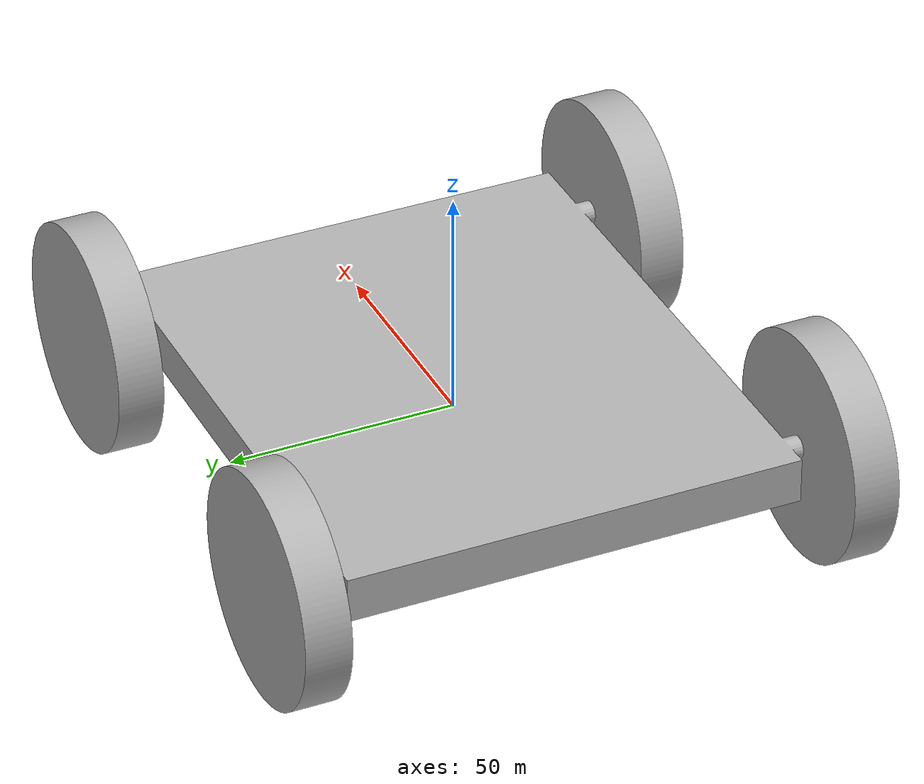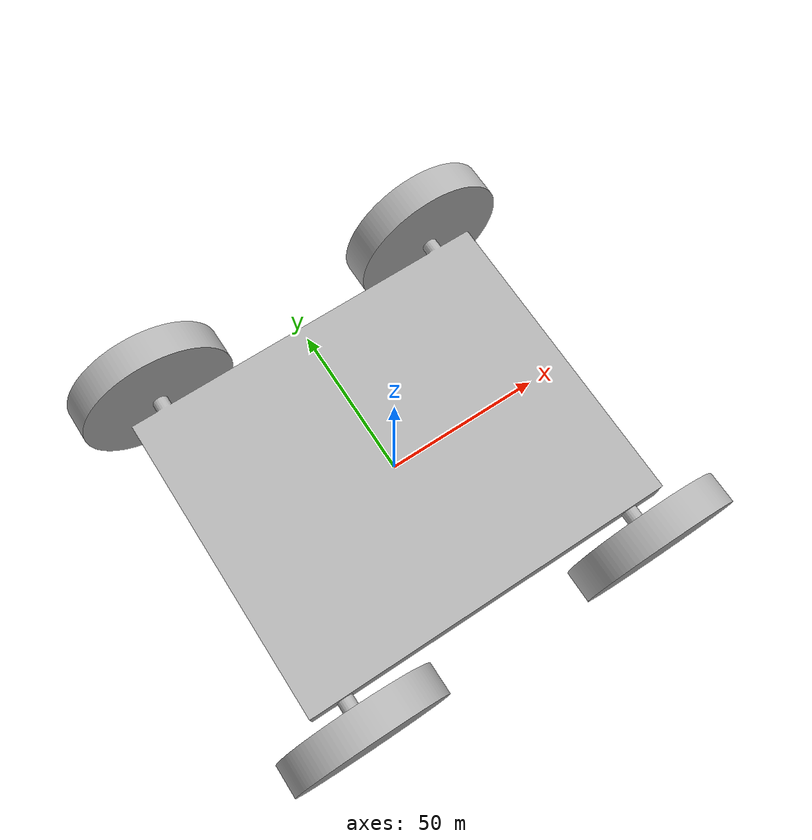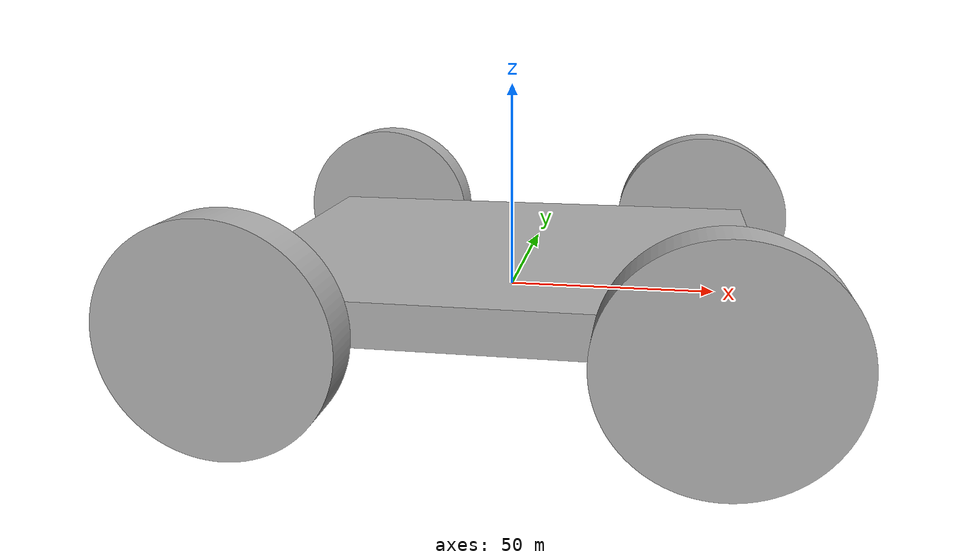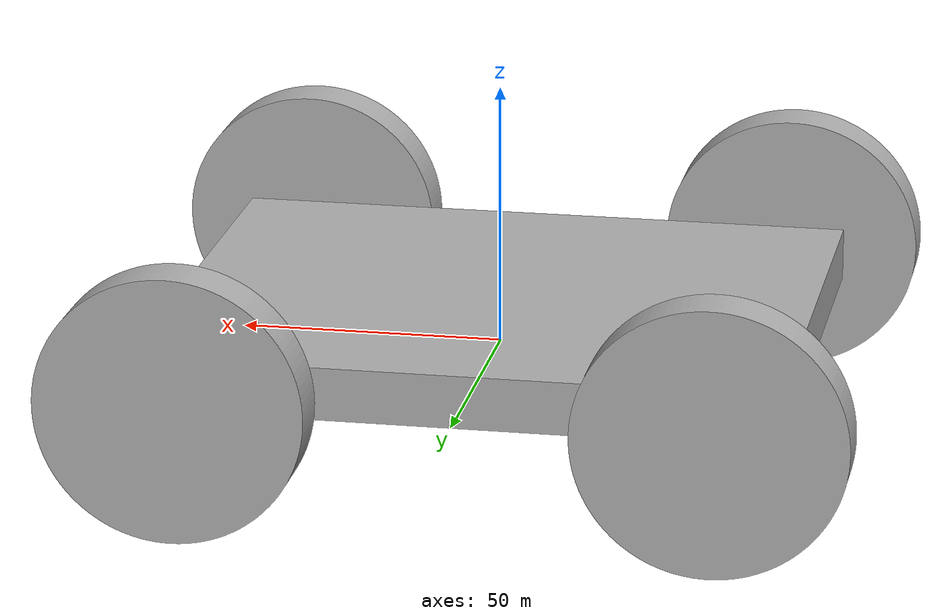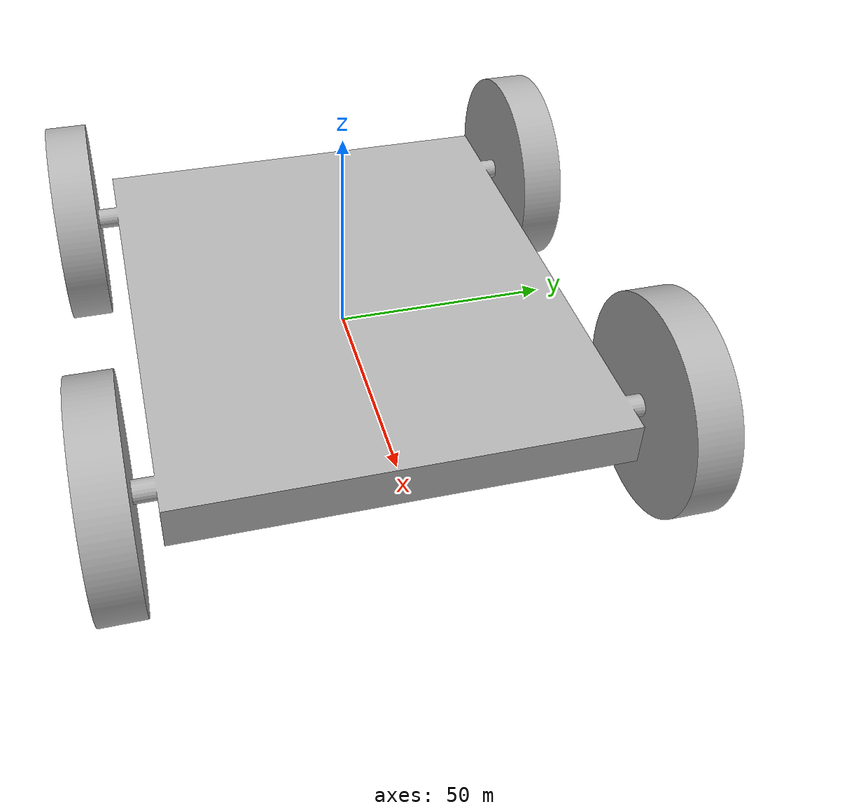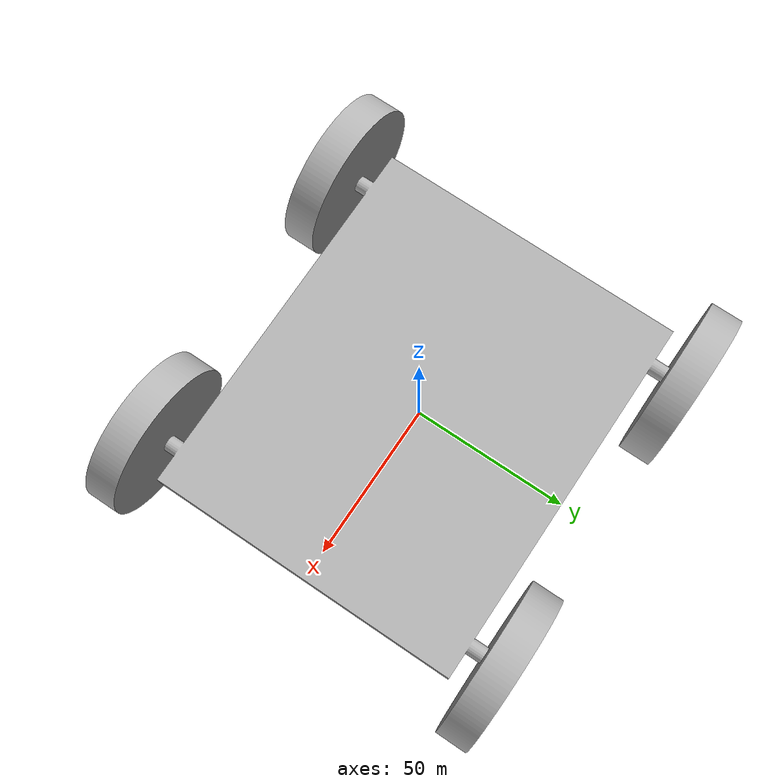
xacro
<?xml version="1.0" ?>
<robot name="zbot" xmlns:xacro="http://www.ros.org/wiki/xacro">

<!-- Fixed xacro includes -->
<xacro:include filename="materials.xacro" />
<xacro:include filename="zbot.ros2control.xacro" />
<xacro:include filename="zbot.gazebo.xacro" />

<link name="base_footprint"/>
<joint name = "base_footprint_joint" type="fixed">
  <parent link="base_footprint"/>
  <child link="base_link"/>
  <origin xyz="0 0 0.02" rpy="0 0 0"/>
</joint>
<link name="base_link">
  <inertial>
    <origin xyz="0.0 0.0 0.005" rpy="0 0 0"/>
    <mass value="0.9450826877913348"/>
    <inertia ixx="0.000801" iyy="0.001146" izz="0.001931" ixy="0.0" iyz="0.0" ixz="0.0"/>
  </inertial>
  <visual>
    <origin xyz="0 0 0" rpy="0 0 0"/>
    <geometry>
      <mesh filename="package://zbot_description/meshes/base_link.stl" scale="1 1 1"/>
    </geometry>
    <material name="silver"/>
  </visual>
  <collision>
    <origin xyz="0 0 0" rpy="0 0 0"/>
    <geometry>
      <mesh filename="package://zbot_description/meshes/base_link.stl" scale="1 1 1"/>
    </geometry>
  </collision>
</link>

<link name="lb_wheel_1">
  <inertial>
    <origin xyz="-4.1874584825324357e-07 -0.0049999999999999975 7.806255641895632e-18" rpy="0 0 0"/>
    <mass value="0.1541343895667492"/>
    <inertia ixx="2.5e-05" iyy="4.8e-05" izz="2.5e-05" ixy="0.0" iyz="0.0" ixz="0.0"/>
  </inertial>
  <visual>
    <origin xyz="-0.049055 0.055 -0.005" rpy="0 0 0"/>
    <geometry>
      <mesh filename="package://zbot_description/meshes/lb_wheel_1.stl" scale="1 1 1"/>
    </geometry>
    <material name="silver"/>
  </visual>
  <collision>
    <origin xyz="-0.049055 0.055 -0.005" rpy="0 0 0"/>
    <geometry>
      <mesh filename="package://zbot_description/meshes/lb_wheel_1.stl" scale="1 1 1"/>
    </geometry>
  </collision>
</link>

<link name="lf_wheel_1">
  <inertial>
    <origin xyz="4.1874584825324357e-07 -0.0049999999999999975 7.806255641895632e-18" rpy="0 0 0"/>
    <mass value="0.1541343895667492"/>
    <inertia ixx="2.5e-05" iyy="4.8e-05" izz="2.5e-05" ixy="-0.0" iyz="0.0" ixz="0.0"/>
  </inertial>
  <visual>
    <origin xyz="0.049055 0.055 -0.005" rpy="0 0 0"/>
    <geometry>
      <mesh filename="package://zbot_description/meshes/lf_wheel_1.stl" scale="1 1 1"/>
    </geometry>
    <material name="silver"/>
  </visual>
  <collision>
    <origin xyz="0.049055 0.055 -0.005" rpy="0 0 0"/>
    <geometry>
      <mesh filename="package://zbot_description/meshes/lf_wheel_1.stl" scale="1 1 1"/>
    </geometry>
  </collision>
  <!-- Front left wheel friction -->
  <gazebo reference="lf_wheel_1">
    <mu1>0.8</mu1>
    <mu2>0.3</mu2>
    <kp>1000000.0</kp>
    <kd>1.0</kd>
  </gazebo>
</link>

<link name="rb_wheel_1">
  <inertial>
    <origin xyz="-4.1874584825324357e-07 0.0049999999999999975 -6.938893903907228e-18" rpy="0 0 0"/>
    <mass value="0.1541343895667492"/>
    <inertia ixx="2.5e-05" iyy="4.8e-05" izz="2.5e-05" ixy="-0.0" iyz="0.0" ixz="-0.0"/>
  </inertial>
  <visual>
    <origin xyz="-0.049055 -0.055 -0.005" rpy="0 0 0"/>
    <geometry>
      <mesh filename="package://zbot_description/meshes/rb_wheel_1.stl" scale="1 1 1"/>
    </geometry>
    <material name="silver"/>
  </visual>
  <collision>
    <origin xyz="-0.049055 -0.055 -0.005" rpy="0 0 0"/>
    <geometry>
      <mesh filename="package://zbot_description/meshes/rb_wheel_1.stl" scale="1 1 1"/>
    </geometry>
  </collision>
</link>

<link name="rf_wheel_1">
  <inertial>
    <origin xyz="4.1874584825324357e-07 0.0049999999999999975 -6.938893903907228e-18" rpy="0 0 0"/>
    <mass value="0.1541343895667492"/>
    <inertia ixx="2.5e-05" iyy="4.8e-05" izz="2.5e-05" ixy="0.0" iyz="0.0" ixz="-0.0"/>
  </inertial>
  <visual>
    <origin xyz="0.049055 -0.055 -0.005" rpy="0 0 0"/>
    <geometry>
      <mesh filename="package://zbot_description/meshes/rf_wheel_1.stl" scale="1 1 1"/>
    </geometry>
    <material name="silver"/>
  </visual>
  <collision>
    <origin xyz="0.049055 -0.055 -0.005" rpy="0 0 0"/>
    <geometry>
      <mesh filename="package://zbot_description/meshes/rf_wheel_1.stl" scale="1 1 1"/>
    </geometry>
  </collision>
</link>

<joint name="lb_wheel_joint" type="continuous">
  <origin xyz="-0.049055 0.055 0.005" rpy="0 0 0"/>
  <parent link="base_link"/>
  <child link="lb_wheel_1"/>
  <axis xyz="0.0 1.0 0.0"/>
</joint>

<joint name="lf_wheel_joint" type="continuous">
  <origin xyz="0.049055 0.055 0.005" rpy="0 0 0"/>
  <parent link="base_link"/>
  <child link="lf_wheel_1"/>
  <axis xyz="0.0 1.0 0.0"/>
</joint>

<joint name="rb_wheel_joint" type="continuous">
  <origin xyz="-0.049055 -0.055 0.005" rpy="0 0 0"/>
  <parent link="base_link"/>
  <child link="rb_wheel_1"/>
  <axis xyz="0.0 1.0 0.0"/>
</joint>

<joint name="rf_wheel_joint" type="continuous">
  <origin xyz="0.049055 -0.055 0.005" rpy="0 0 0"/>
  <parent link="base_link"/>
  <child link="rf_wheel_1"/>
  <axis xyz="0.0 1.0 0.0"/>
</joint>

</robot>

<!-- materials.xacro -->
<robot name="zbot" xmlns:xacro="http://www.ros.org/wiki/xacro" >

<material name="silver">
  <color rgba="0.700 0.700 0.700 1.000"/>
</material>

</robot>

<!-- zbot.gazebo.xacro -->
<robot name="zbot" xmlns:xacro="http://www.ros.org/wiki/xacro">

  <xacro:property name="body_color" value="Gazebo/Silver" />

  <!-- Base Link Gazebo Properties -->
  <gazebo reference="base_link">
    <material>${body_color}</material>
    <mu1>0.2</mu1>
    <mu2>0.2</mu2>
    <self_collide>true</self_collide>
    <gravity>true</gravity>
  </gazebo>

  <!-- Left Back Wheel -->
  <gazebo reference="lb_wheel_1">
    <material>${body_color}</material>
    <mu1>0.8</mu1>
    <mu2>0.3</mu2>
    <kp>1000000.0</kp>
    <kd>1.0</kd>
    <self_collide>false</self_collide>
  </gazebo>

  <!-- Left Front Wheel -->
  <gazebo reference="lf_wheel_1">
    <material>${body_color}</material>
    <mu1>0.8</mu1>
    <mu2>0.3</mu2>
    <kp>1000000.0</kp>
    <kd>1.0</kd>
    <self_collide>false</self_collide>
  </gazebo>

  <!-- Right Back Wheel -->
  <gazebo reference="rb_wheel_1">
    <material>${body_color}</material>
    <mu1>0.8</mu1>
    <mu2>0.3</mu2>
    <kp>1000000.0</kp>
    <kd>1.0</kd>
    <self_collide>false</self_collide>
  </gazebo>

  <!-- Right Front Wheel -->
  <gazebo reference="rf_wheel_1">
    <material>${body_color}</material>
    <mu1>0.8</mu1>
    <mu2>0.3</mu2>
    <kp>1000000.0</kp>
    <kd>1.0</kd>
    <self_collide>false</self_collide>
  </gazebo>

  <!-- Gazebo ROS 2 Control Plugin -->
  <gazebo>
    <plugin filename="gz_ros2_control-system" name="gz_ros2_control::GazeboSimROS2ControlPlugin">
      <parameters>$package:///config/controllers.yaml</parameters>
    </plugin>
  </gazebo>

</robot>
